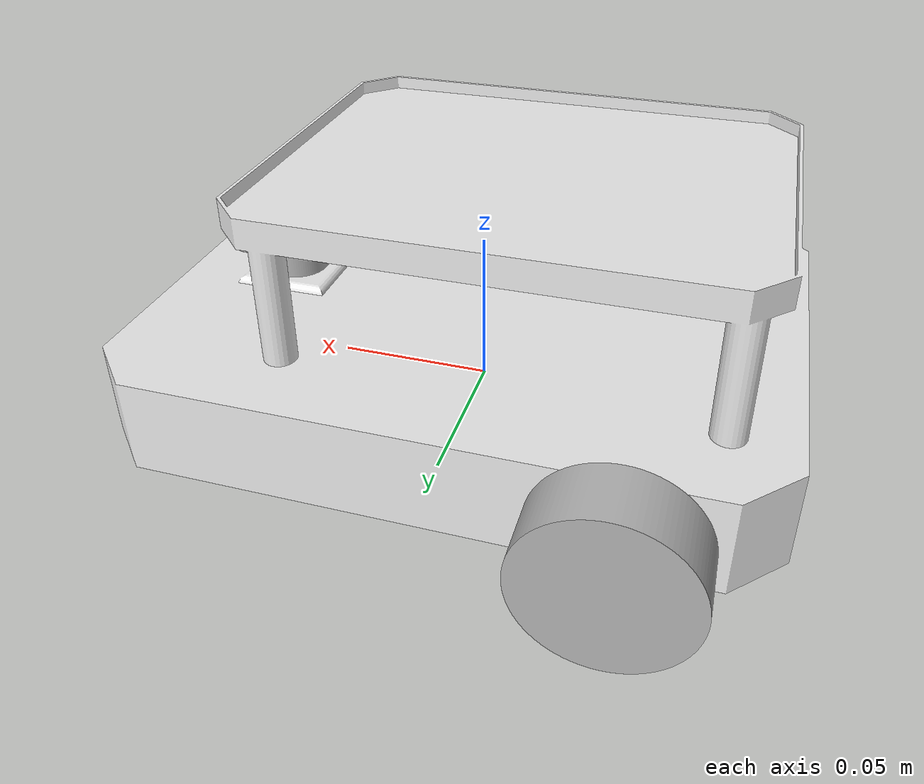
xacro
<?xml version="1.0" ?>
<robot name="b_bot1" xmlns:xacro="http://www.ros.org/wiki/xacro">

<xacro:include filename="$(find b_bot_description)/urdf/materials.xacro" />
<xacro:include filename="$(find b_bot_description)/urdf/b_bot.trans" />
<xacro:include filename="$(find b_bot_description)/urdf/b_bot.gazebo" />
<xacro:include filename="$(find b_bot_description)/urdf/gazebo_control.xacro" />

<link name="base_footprint">
</link>

<link name="base_link">
  <inertial>
    <origin xyz="-0.0009198582121735998 1.827731769453102e-17 0.02062085333673201" rpy="0 0 0"/>
    <mass value="80"/>
    <inertia
    ixx="0.2064" ixy="0.0" ixz="0.0"
    iyy="0.3231" iyz="0.0"
    izz="0.4167"/>
  </inertial>
  <visual>
    <origin xyz="0 0 0" rpy="0 0 0"/>
    <geometry>
      <mesh filename="file://$(find b_bot_description)/meshes/base_link.stl" scale="0.001 0.001 0.001"/>
    </geometry>
  </visual>
  <collision>
    <origin xyz="0 0 0" rpy="0 0 0"/>
    <geometry>
      <mesh filename="file://$(find b_bot_description)/meshes/base_link.stl" scale="0.001 0.001 0.001"/>
    </geometry>
  </collision>
</link>

<gazebo reference="base_link">
  <material>Gazebo/white</material>
</gazebo>

<link name="right_wheel_1">
  <inertial>
    <origin xyz="1.1094058068039647e-08 -0.009999999999999981 1.049641964508824e-07" rpy="0 0 0"/>
    <mass value="10"/>
    <inertia
    ixx="0.001896" ixy="0.0" ixz="0.0"
    iyy="0.001896" iyz="0.0"
    izz="0.003125"/>
  </inertial>
  <visual>
    <origin xyz="0.056645 0.075 -0.010451" rpy="0 0 0"/>
    <geometry>
      <mesh filename="file://$(find b_bot_description)/meshes/right_wheel_1.stl" scale="0.001 0.001 0.001"/>
    </geometry>
    <material name="silver"/>
  </visual>
  <collision>
    <origin xyz="0.056645 0.075 -0.010451" rpy="0 0 0"/>
    <geometry>
      <mesh filename="file://$(find b_bot_description)/meshes/right_wheel_1.stl" scale="0.001 0.001 0.001"/>
    </geometry>
  </collision>
</link>

<gazebo reference="right_wheel_1">
  <material>Gazebo/Grey</material>
</gazebo>

<link name="left_wheel_1">
  <inertial>
    <origin xyz="1.1094058088856329e-08 0.010000000000000009 1.0496419643526989e-07" rpy="0 0 0"/>
    <mass value="10"/>
   <inertia
    ixx="0.001896" ixy="0.0" ixz="0.0"
    iyy="0.001896" iyz="0.0"
    izz="0.003125"/>
  </inertial>
  <visual>
    <origin xyz="0.056645 -0.075 -0.010451" rpy="0 0 0"/>
    <geometry>
      <mesh filename="file://$(find b_bot_description)/meshes/left_wheel_1.stl" scale="0.001 0.001 0.001"/>
    </geometry>
    <material name="silver"/>
  </visual>
  <collision>
    <origin xyz="0.056645 -0.075 -0.010451" rpy="0 0 0"/>
    <geometry>
      <mesh filename="file://$(find b_bot_description)/meshes/left_wheel_1.stl" scale="0.001 0.001 0.001"/>
    </geometry>
  </collision>
</link>

<gazebo reference="left_wheel_1">
  <material>Gazebo/Grey</material>
</gazebo>

<link name="lidar_1">
  <inertial>
    <origin xyz="0.0 5.3716740562920835e-18 0.009388657916551336" rpy="0 0 0"/>
    <mass value="0.059447424304871335"/>
    <inertia ixx="4e-06" iyy="4e-06" izz="6e-06" ixy="0.0" iyz="0.0" ixz="-0.0"/>
  </inertial>
  <visual>
    <origin xyz="-0.065 -0.0 -0.032" rpy="0 0 0"/>
    <geometry>
      <mesh filename="file://$(find b_bot_description)/meshes/lidar_1.stl" scale="0.001 0.001 0.001"/>
    </geometry>
    <material name="silver"/>
  </visual>
  <collision>
    <origin xyz="-0.065 -0.0 -0.032" rpy="0 0 0"/>
    <geometry>
      <mesh filename="file://$(find b_bot_description)/meshes/lidar_1.stl" scale="0.001 0.001 0.001"/>
    </geometry>
  </collision>
</link>

<gazebo reference="lidar_1">
  <material>Gazebo/Blue</material>
</gazebo>

<joint name="base_joint" type="fixed">
  <origin xyz="0 0 0" rpy="0 0 0"/>
  <parent link="base_footprint"/>
  <child link="base_link"/>
  <axis xyz="0.0 1.0 0.0"/>
</joint>

<joint name="right_joint" type="continuous">
  <origin xyz="-0.056645 -0.075 0.010451" rpy="0 0 0"/>
  <parent link="base_link"/>
  <child link="right_wheel_1"/>
  <axis xyz="0.0 1.0 0.0"/>
</joint>

<joint name="left_joint" type="continuous">
  <origin xyz="-0.056645 0.075 0.010451" rpy="0 0 0"/>
  <parent link="base_link"/>
  <child link="left_wheel_1"/>
  <axis xyz="-0.0 1.0 0.0"/>
</joint>

<joint name="lidar_joint" type="fixed">
  <origin xyz="0.065 0.0 0.032" rpy="0 0 0"/>
  <parent link="base_link"/>
  <child link="lidar_1"/>
</joint>

</robot>

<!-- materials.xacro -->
<robot name="b_bot1" xmlns:xacro="http://www.ros.org/wiki/xacro" >

<material name="silver">
  <color rgba="0.700 0.700 0.700 1.000"/>
</material>

</robot>

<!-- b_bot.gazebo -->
<robot name="b_bot1" xmlns:xacro="http://www.ros.org/wiki/xacro" >

<xacro:property name="body_color" value="Gazebo/Silver" />

<gazebo>
  <plugin name="control" filename="libgazebo_ros_control.so"/>
</gazebo>
<gazebo reference="base_link">
  <material>${body_color}</material>
  <mu1>1</mu1>
  <mu2>1</mu2>
  <self_collide>true</self_collide>
  <gravity>true</gravity>
</gazebo>

<gazebo reference="right_wheel_1">
  <material>${body_color}</material>
  <mu1>100</mu1>
  <mu2>100</mu2>
  <self_collide>true</self_collide>
</gazebo>

<gazebo reference="left_wheel_1">
  <material>${body_color}</material>
  <mu1>100</mu1>
  <mu2>100</mu2>
  <self_collide>true</self_collide>
</gazebo>

<gazebo reference="lidar_1">
  <material>${body_color}</material>
  <mu1>0.2</mu1>
  <mu2>0.2</mu2>
  <self_collide>true</self_collide>
</gazebo>

</robot>
